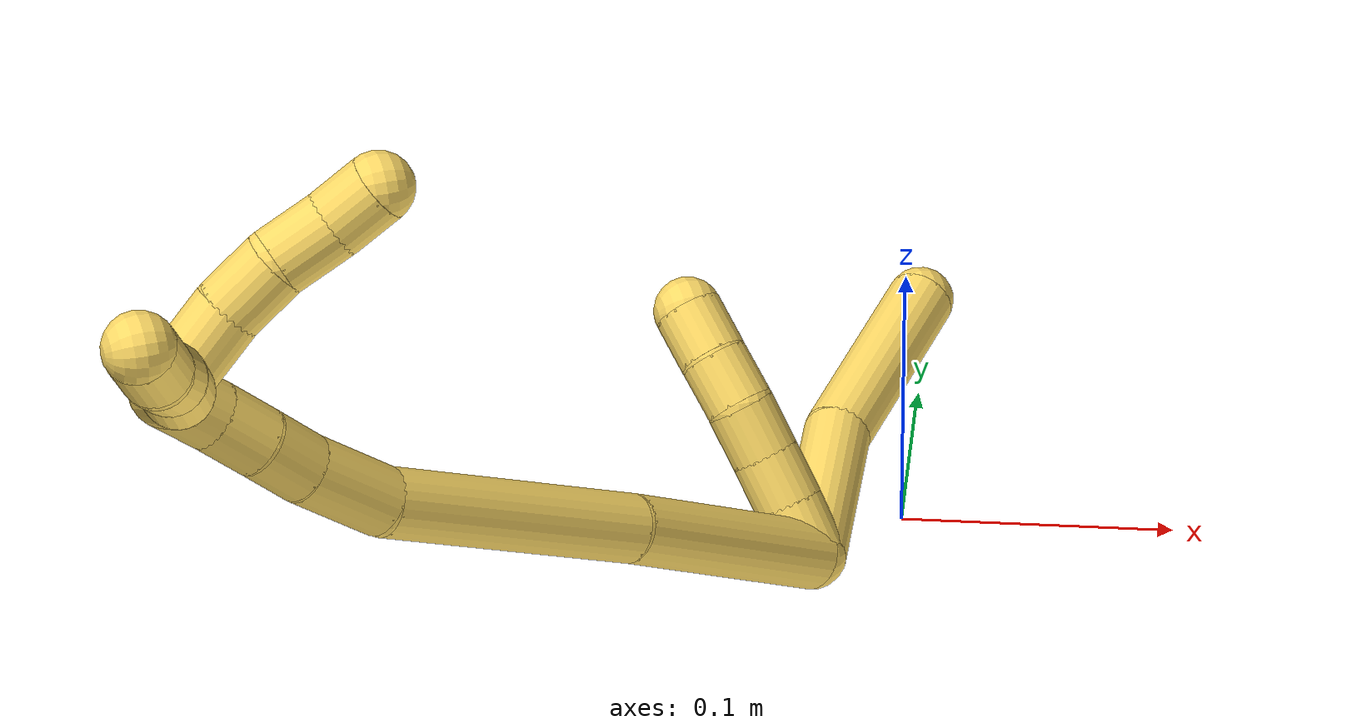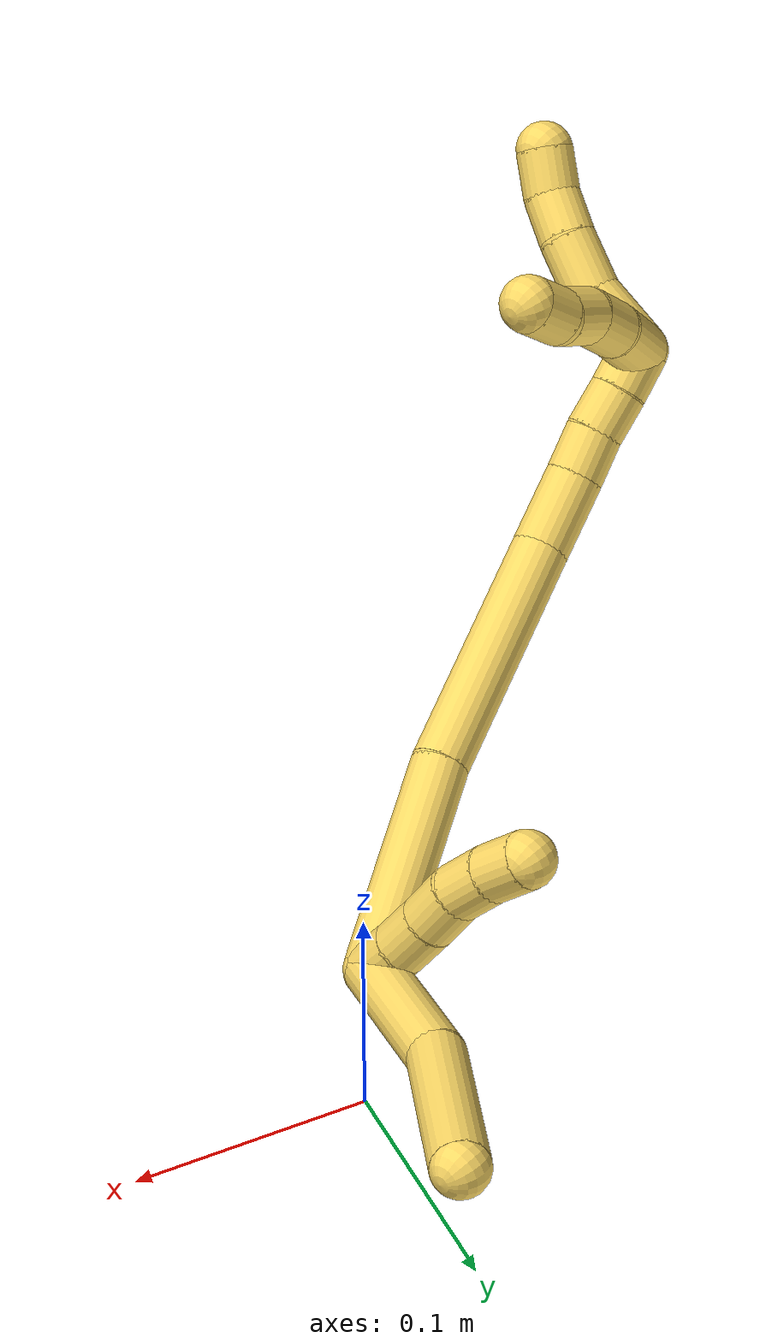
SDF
<sdf version="1.7">
 <world name="default">
  <model name="5">
   <static>0</static>
   <link name="5">
    <collision name="collision-cylinder-e_1_2_8">
     <pose>0.013953 0.027527 -0.015875 -2.09392 0.413743 -0.696973</pose>
     <geometry><cylinder><radius>0.0125</radius><length>0.06941</length></cylinder></geometry>
     <surface>
      <friction><ode><mu>1.16</mu><mu2>1.16</mu2><slip1>0</slip1><slip2>0</slip2></ode></friction>
      <contact><ode><kp>1e+06</kp><kd>1</kd><max_vel>0</max_vel><min_depth>0.001</min_depth></ode></contact>
     </surface>
    </collision>
    <visual name="visual-cylinder-e_1_2_8">
     <pose>0.013953 0.027527 -0.015875 -2.09392 0.413743 -0.696973</pose>
     <geometry><cylinder><radius>0.0125</radius><length>0.06941</length></cylinder></geometry>
     <material><ambient>1 0.858824 0.4 1</ambient></material>
    </visual>
    <collision name="collision-cylinder-e_2_8_6">
     <pose>0.043506 0.080365 -0.058947 -2.39207 0.397542 -0.946541</pose>
     <geometry><cylinder><radius>0.0125</radius><length>0.08059</length></cylinder></geometry>
     <surface>
      <friction><ode><mu>1.16</mu><mu2>1.16</mu2><slip1>0</slip1><slip2>0</slip2></ode></friction>
      <contact><ode><kp>1e+06</kp><kd>1</kd><max_vel>0</max_vel><min_depth>0.001</min_depth></ode></contact>
     </surface>
    </collision>
    <visual name="visual-cylinder-e_2_8_6">
     <pose>0.043506 0.080365 -0.058947 -2.39207 0.397542 -0.946541</pose>
     <geometry><cylinder><radius>0.0125</radius><length>0.08059</length></cylinder></geometry>
     <material><ambient>1 0.858824 0.4 1</ambient></material>
    </visual>
    <collision name="collision-cylinder-e_1_2_9">
     <pose>0.009202 0.003204 0.002248 -0.95887 1.16867 -0.662364</pose>
     <geometry><cylinder><radius>0.0125</radius><length>0.02</length></cylinder></geometry>
     <surface>
      <friction><ode><mu>1.16</mu><mu2>1.16</mu2><slip1>0</slip1><slip2>0</slip2></ode></friction>
      <contact><ode><kp>1e+06</kp><kd>1</kd><max_vel>0</max_vel><min_depth>0.001</min_depth></ode></contact>
     </surface>
    </collision>
    <visual name="visual-cylinder-e_1_2_9">
     <pose>0.009202 0.003204 0.002248 -0.95887 1.16867 -0.662364</pose>
     <geometry><cylinder><radius>0.0125</radius><length>0.02</length></cylinder></geometry>
     <material><ambient>1 0.858824 0.4 1</ambient></material>
    </visual>
    <collision name="collision-cylinder-e_2_9_10">
     <pose>0.027644 0.009056 0.007257 -0.764796 1.1782 -0.525129</pose>
     <geometry><cylinder><radius>0.0125</radius><length>0.02</length></cylinder></geometry>
     <surface>
      <friction><ode><mu>1.16</mu><mu2>1.16</mu2><slip1>0</slip1><slip2>0</slip2></ode></friction>
      <contact><ode><kp>1e+06</kp><kd>1</kd><max_vel>0</max_vel><min_depth>0.001</min_depth></ode></contact>
     </surface>
    </collision>
    <visual name="visual-cylinder-e_2_9_10">
     <pose>0.027644 0.009056 0.007257 -0.764796 1.1782 -0.525129</pose>
     <geometry><cylinder><radius>0.0125</radius><length>0.02</length></cylinder></geometry>
     <material><ambient>1 0.858824 0.4 1</ambient></material>
    </visual>
    <collision name="collision-cylinder-e_3_10_11">
     <pose>0.046177 0.013963 0.012937 -0.658249 1.19272 -0.455641</pose>
     <geometry><cylinder><radius>0.0125</radius><length>0.02</length></cylinder></geometry>
     <surface>
      <friction><ode><mu>1.16</mu><mu2>1.16</mu2><slip1>0</slip1><slip2>0</slip2></ode></friction>
      <contact><ode><kp>1e+06</kp><kd>1</kd><max_vel>0</max_vel><min_depth>0.001</min_depth></ode></contact>
     </surface>
    </collision>
    <visual name="visual-cylinder-e_3_10_11">
     <pose>0.046177 0.013963 0.012937 -0.658249 1.19272 -0.455641</pose>
     <geometry><cylinder><radius>0.0125</radius><length>0.02</length></cylinder></geometry>
     <material><ambient>1 0.858824 0.4 1</ambient></material>
    </visual>
    <collision name="collision-cylinder-e_4_11_12">
     <pose>0.064063 0.020574 0.018545 -1.01763 1.03377 -0.614089</pose>
     <geometry><cylinder><radius>0.0125</radius><length>0.02</length></cylinder></geometry>
     <surface>
      <friction><ode><mu>1.16</mu><mu2>1.16</mu2><slip1>0</slip1><slip2>0</slip2></ode></friction>
      <contact><ode><kp>1e+06</kp><kd>1</kd><max_vel>0</max_vel><min_depth>0.001</min_depth></ode></contact>
     </surface>
    </collision>
    <visual name="visual-cylinder-e_4_11_12">
     <pose>0.064063 0.020574 0.018545 -1.01763 1.03377 -0.614089</pose>
     <geometry><cylinder><radius>0.0125</radius><length>0.02</length></cylinder></geometry>
     <material><ambient>1 0.858824 0.4 1</ambient></material>
    </visual>
    <collision name="collision-cylinder-e_5_12_5">
     <pose>0.080822 0.030252 0.023456 -1.1754 0.955703 -0.664479</pose>
     <geometry><cylinder><radius>0.0125</radius><length>0.02</length></cylinder></geometry>
     <surface>
      <friction><ode><mu>1.16</mu><mu2>1.16</mu2><slip1>0</slip1><slip2>0</slip2></ode></friction>
      <contact><ode><kp>1e+06</kp><kd>1</kd><max_vel>0</max_vel><min_depth>0.001</min_depth></ode></contact>
     </surface>
    </collision>
    <visual name="visual-cylinder-e_5_12_5">
     <pose>0.080822 0.030252 0.023456 -1.1754 0.955703 -0.664479</pose>
     <geometry><cylinder><radius>0.0125</radius><length>0.02</length></cylinder></geometry>
     <material><ambient>1 0.858824 0.4 1</ambient></material>
    </visual>
    <collision name="collision-cylinder-e_1_2_13">
     <pose>0.017268 -0.020289 0.038931 0.480427 0.37476 0.092818</pose>
     <geometry><cylinder><radius>0.0125</radius><length>0.094349</length></cylinder></geometry>
     <surface>
      <friction><ode><mu>1.16</mu><mu2>1.16</mu2><slip1>0</slip1><slip2>0</slip2></ode></friction>
      <contact><ode><kp>1e+06</kp><kd>1</kd><max_vel>0</max_vel><min_depth>0.001</min_depth></ode></contact>
     </surface>
    </collision>
    <visual name="visual-cylinder-e_1_2_13">
     <pose>0.017268 -0.020289 0.038931 0.480427 0.37476 0.092818</pose>
     <geometry><cylinder><radius>0.0125</radius><length>0.094349</length></cylinder></geometry>
     <material><ambient>1 0.858824 0.4 1</ambient></material>
    </visual>
    <collision name="collision-cylinder-e_2_13_14">
     <pose>0.052705 -0.058701 0.125745 0.361824 0.340999 0.062963</pose>
     <geometry><cylinder><radius>0.0125</radius><length>0.108655</length></cylinder></geometry>
     <surface>
      <friction><ode><mu>1.16</mu><mu2>1.16</mu2><slip1>0</slip1><slip2>0</slip2></ode></friction>
      <contact><ode><kp>1e+06</kp><kd>1</kd><max_vel>0</max_vel><min_depth>0.001</min_depth></ode></contact>
     </surface>
    </collision>
    <visual name="visual-cylinder-e_2_13_14">
     <pose>0.052705 -0.058701 0.125745 0.361824 0.340999 0.062963</pose>
     <geometry><cylinder><radius>0.0125</radius><length>0.108655</length></cylinder></geometry>
     <material><ambient>1 0.858824 0.4 1</ambient></material>
    </visual>
    <collision name="collision-cylinder-e_3_14_15">
     <pose>0.080523 -0.081692 0.187533 0.336737 0.579938 0.101349</pose>
     <geometry><cylinder><radius>0.0125</radius><length>0.03522</length></cylinder></geometry>
     <surface>
      <friction><ode><mu>1.16</mu><mu2>1.16</mu2><slip1>0</slip1><slip2>0</slip2></ode></friction>
      <contact><ode><kp>1e+06</kp><kd>1</kd><max_vel>0</max_vel><min_depth>0.001</min_depth></ode></contact>
     </surface>
    </collision>
    <visual name="visual-cylinder-e_3_14_15">
     <pose>0.080523 -0.081692 0.187533 0.336737 0.579938 0.101349</pose>
     <geometry><cylinder><radius>0.0125</radius><length>0.03522</length></cylinder></geometry>
     <material><ambient>1 0.858824 0.4 1</ambient></material>
    </visual>
    <collision name="collision-cylinder-e_4_15_16">
     <pose>0.096762 -0.089362 0.209052 0.352699 0.681974 0.1263</pose>
     <geometry><cylinder><radius>0.0125</radius><length>0.020906</length></cylinder></geometry>
     <surface>
      <friction><ode><mu>1.16</mu><mu2>1.16</mu2><slip1>0</slip1><slip2>0</slip2></ode></friction>
      <contact><ode><kp>1e+06</kp><kd>1</kd><max_vel>0</max_vel><min_depth>0.001</min_depth></ode></contact>
     </surface>
    </collision>
    <visual name="visual-cylinder-e_4_15_16">
     <pose>0.096762 -0.089362 0.209052 0.352699 0.681974 0.1263</pose>
     <geometry><cylinder><radius>0.0125</radius><length>0.020906</length></cylinder></geometry>
     <material><ambient>1 0.858824 0.4 1</ambient></material>
    </visual>
    <collision name="collision-cylinder-e_5_16_17">
     <pose>0.109863 -0.093844 0.224448 0.212494 0.685722 0.076102</pose>
     <geometry><cylinder><radius>0.0125</radius><length>0.020569</length></cylinder></geometry>
     <surface>
      <friction><ode><mu>1.16</mu><mu2>1.16</mu2><slip1>0</slip1><slip2>0</slip2></ode></friction>
      <contact><ode><kp>1e+06</kp><kd>1</kd><max_vel>0</max_vel><min_depth>0.001</min_depth></ode></contact>
     </surface>
    </collision>
    <visual name="visual-cylinder-e_5_16_17">
     <pose>0.109863 -0.093844 0.224448 0.212494 0.685722 0.076102</pose>
     <geometry><cylinder><radius>0.0125</radius><length>0.020569</length></cylinder></geometry>
     <material><ambient>1 0.858824 0.4 1</ambient></material>
    </visual>
    <collision name="collision-cylinder-e_6_17_1">
     <pose>0.122487 -0.097736 0.240026 0.276525 0.646031 0.093091</pose>
     <geometry><cylinder><radius>0.0125</radius><length>0.020302</length></cylinder></geometry>
     <surface>
      <friction><ode><mu>1.16</mu><mu2>1.16</mu2><slip1>0</slip1><slip2>0</slip2></ode></friction>
      <contact><ode><kp>1e+06</kp><kd>1</kd><max_vel>0</max_vel><min_depth>0.001</min_depth></ode></contact>
     </surface>
    </collision>
    <visual name="visual-cylinder-e_6_17_1">
     <pose>0.122487 -0.097736 0.240026 0.276525 0.646031 0.093091</pose>
     <geometry><cylinder><radius>0.0125</radius><length>0.020302</length></cylinder></geometry>
     <material><ambient>1 0.858824 0.4 1</ambient></material>
    </visual>
    <collision name="collision-cylinder-e_1_1_18">
     <pose>0.131947 -0.115364 0.248914 1.50018 0.213434 0.198969</pose>
     <geometry><cylinder><radius>0.0125</radius><length>0.031627</length></cylinder></geometry>
     <surface>
      <friction><ode><mu>1.16</mu><mu2>1.16</mu2><slip1>0</slip1><slip2>0</slip2></ode></friction>
      <contact><ode><kp>1e+06</kp><kd>1</kd><max_vel>0</max_vel><min_depth>0.001</min_depth></ode></contact>
     </surface>
    </collision>
    <visual name="visual-cylinder-e_1_1_18">
     <pose>0.131947 -0.115364 0.248914 1.50018 0.213434 0.198969</pose>
     <geometry><cylinder><radius>0.0125</radius><length>0.031627</length></cylinder></geometry>
     <material><ambient>1 0.858824 0.4 1</ambient></material>
    </visual>
    <collision name="collision-cylinder-e_2_18_19">
     <pose>0.140671 -0.142733 0.253441 1.29086 0.407859 0.308973</pose>
     <geometry><cylinder><radius>0.0125</radius><length>0.027097</length></cylinder></geometry>
     <surface>
      <friction><ode><mu>1.16</mu><mu2>1.16</mu2><slip1>0</slip1><slip2>0</slip2></ode></friction>
      <contact><ode><kp>1e+06</kp><kd>1</kd><max_vel>0</max_vel><min_depth>0.001</min_depth></ode></contact>
     </surface>
    </collision>
    <visual name="visual-cylinder-e_2_18_19">
     <pose>0.140671 -0.142733 0.253441 1.29086 0.407859 0.308973</pose>
     <geometry><cylinder><radius>0.0125</radius><length>0.027097</length></cylinder></geometry>
     <material><ambient>1 0.858824 0.4 1</ambient></material>
    </visual>
    <collision name="collision-cylinder-e_3_19_20">
     <pose>0.149756 -0.163626 0.260705 1.16619 0.364528 0.241955</pose>
     <geometry><cylinder><radius>0.0125</radius><length>0.020818</length></cylinder></geometry>
     <surface>
      <friction><ode><mu>1.16</mu><mu2>1.16</mu2><slip1>0</slip1><slip2>0</slip2></ode></friction>
      <contact><ode><kp>1e+06</kp><kd>1</kd><max_vel>0</max_vel><min_depth>0.001</min_depth></ode></contact>
     </surface>
    </collision>
    <visual name="visual-cylinder-e_3_19_20">
     <pose>0.149756 -0.163626 0.260705 1.16619 0.364528 0.241955</pose>
     <geometry><cylinder><radius>0.0125</radius><length>0.020818</length></cylinder></geometry>
     <material><ambient>1 0.858824 0.4 1</ambient></material>
    </visual>
    <collision name="collision-cylinder-e_4_20_4">
     <pose>0.159569 -0.179872 0.268279 1.09712 0.639222 0.399129</pose>
     <geometry><cylinder><radius>0.0125</radius><length>0.020458</length></cylinder></geometry>
     <surface>
      <friction><ode><mu>1.16</mu><mu2>1.16</mu2><slip1>0</slip1><slip2>0</slip2></ode></friction>
      <contact><ode><kp>1e+06</kp><kd>1</kd><max_vel>0</max_vel><min_depth>0.001</min_depth></ode></contact>
     </surface>
    </collision>
    <visual name="visual-cylinder-e_4_20_4">
     <pose>0.159569 -0.179872 0.268279 1.09712 0.639222 0.399129</pose>
     <geometry><cylinder><radius>0.0125</radius><length>0.020458</length></cylinder></geometry>
     <material><ambient>1 0.858824 0.4 1</ambient></material>
    </visual>
    <collision name="collision-cylinder-e_1_1_21">
     <pose>0.140739 -0.101717 0.235945 2.99379 0.790858 2.7905</pose>
     <geometry><cylinder><radius>0.0125</radius><length>0.034154</length></cylinder></geometry>
     <surface>
      <friction><ode><mu>1.16</mu><mu2>1.16</mu2><slip1>0</slip1><slip2>0</slip2></ode></friction>
      <contact><ode><kp>1e+06</kp><kd>1</kd><max_vel>0</max_vel><min_depth>0.001</min_depth></ode></contact>
     </surface>
    </collision>
    <visual name="visual-cylinder-e_1_1_21">
     <pose>0.140739 -0.101717 0.235945 2.99379 0.790858 2.7905</pose>
     <geometry><cylinder><radius>0.0125</radius><length>0.034154</length></cylinder></geometry>
     <material><ambient>1 0.858824 0.4 1</ambient></material>
    </visual>
    <collision name="collision-cylinder-e_2_21_22">
     <pose>0.159987 -0.106297 0.215567 2.82217 0.671005 2.27605</pose>
     <geometry><cylinder><radius>0.0125</radius><length>0.022862</length></cylinder></geometry>
     <surface>
      <friction><ode><mu>1.16</mu><mu2>1.16</mu2><slip1>0</slip1><slip2>0</slip2></ode></friction>
      <contact><ode><kp>1e+06</kp><kd>1</kd><max_vel>0</max_vel><min_depth>0.001</min_depth></ode></contact>
     </surface>
    </collision>
    <visual name="visual-cylinder-e_2_21_22">
     <pose>0.159987 -0.106297 0.215567 2.82217 0.671005 2.27605</pose>
     <geometry><cylinder><radius>0.0125</radius><length>0.022862</length></cylinder></geometry>
     <material><ambient>1 0.858824 0.4 1</ambient></material>
    </visual>
    <collision name="collision-cylinder-e_3_22_23">
     <pose>0.172165 -0.110153 0.19694 3.03883 0.462034 2.71109</pose>
     <geometry><cylinder><radius>0.0125</radius><length>0.022746</length></cylinder></geometry>
     <surface>
      <friction><ode><mu>1.16</mu><mu2>1.16</mu2><slip1>0</slip1><slip2>0</slip2></ode></friction>
      <contact><ode><kp>1e+06</kp><kd>1</kd><max_vel>0</max_vel><min_depth>0.001</min_depth></ode></contact>
     </surface>
    </collision>
    <visual name="visual-cylinder-e_3_22_23">
     <pose>0.172165 -0.110153 0.19694 3.03883 0.462034 2.71109</pose>
     <geometry><cylinder><radius>0.0125</radius><length>0.022746</length></cylinder></geometry>
     <material><ambient>1 0.858824 0.4 1</ambient></material>
    </visual>
    <collision name="collision-cylinder-e_4_23_3">
     <pose>0.182785 -0.114548 0.179045 2.73432 0.58059 1.93194</pose>
     <geometry><cylinder><radius>0.0125</radius><length>0.020237</length></cylinder></geometry>
     <surface>
      <friction><ode><mu>1.16</mu><mu2>1.16</mu2><slip1>0</slip1><slip2>0</slip2></ode></friction>
      <contact><ode><kp>1e+06</kp><kd>1</kd><max_vel>0</max_vel><min_depth>0.001</min_depth></ode></contact>
     </surface>
    </collision>
    <visual name="visual-cylinder-e_4_23_3">
     <pose>0.182785 -0.114548 0.179045 2.73432 0.58059 1.93194</pose>
     <geometry><cylinder><radius>0.0125</radius><length>0.020237</length></cylinder></geometry>
     <material><ambient>1 0.858824 0.4 1</ambient></material>
    </visual>
    <collision name="collision-sphere-3">
     <pose>0.188335 -0.1179 0.171276 0 -0 0</pose>
     <geometry><sphere><radius>0.0125</radius></sphere></geometry>
     <surface>
      <friction><ode><mu>1.16</mu><mu2>1.16</mu2><slip1>0</slip1><slip2>0</slip2></ode></friction>
      <contact><ode><kp>1e+06</kp><kd>1</kd><max_vel>0</max_vel><min_depth>0.001</min_depth></ode></contact>
     </surface>
    </collision>
    <visual name="visual-sphere-3">
     <pose>0.188335 -0.1179 0.171276 0 -0 0</pose>
     <geometry><sphere><radius>0.0125</radius></sphere></geometry>
     <material><ambient>1 0.858824 0.4 1</ambient></material>
    </visual>
    <collision name="collision-sphere-23">
     <pose>0.177235 -0.111197 0.186813 0 -0 0</pose>
     <geometry><sphere><radius>0.0125</radius></sphere></geometry>
     <surface>
      <friction><ode><mu>1.16</mu><mu2>1.16</mu2><slip1>0</slip1><slip2>0</slip2></ode></friction>
      <contact><ode><kp>1e+06</kp><kd>1</kd><max_vel>0</max_vel><min_depth>0.001</min_depth></ode></contact>
     </surface>
    </collision>
    <visual name="visual-sphere-23">
     <pose>0.177235 -0.111197 0.186813 0 -0 0</pose>
     <geometry><sphere><radius>0.0125</radius></sphere></geometry>
     <material><ambient>1 0.858824 0.4 1</ambient></material>
    </visual>
    <collision name="collision-sphere-22">
     <pose>0.167095 -0.109108 0.207067 0 -0 0</pose>
     <geometry><sphere><radius>0.0125</radius></sphere></geometry>
     <surface>
      <friction><ode><mu>1.16</mu><mu2>1.16</mu2><slip1>0</slip1><slip2>0</slip2></ode></friction>
      <contact><ode><kp>1e+06</kp><kd>1</kd><max_vel>0</max_vel><min_depth>0.001</min_depth></ode></contact>
     </surface>
    </collision>
    <visual name="visual-sphere-22">
     <pose>0.167095 -0.109108 0.207067 0 -0 0</pose>
     <geometry><sphere><radius>0.0125</radius></sphere></geometry>
     <material><ambient>1 0.858824 0.4 1</ambient></material>
    </visual>
    <collision name="collision-sphere-21">
     <pose>0.15288 -0.103486 0.224067 0 -0 0</pose>
     <geometry><sphere><radius>0.0125</radius></sphere></geometry>
     <surface>
      <friction><ode><mu>1.16</mu><mu2>1.16</mu2><slip1>0</slip1><slip2>0</slip2></ode></friction>
      <contact><ode><kp>1e+06</kp><kd>1</kd><max_vel>0</max_vel><min_depth>0.001</min_depth></ode></contact>
     </surface>
    </collision>
    <visual name="visual-sphere-21">
     <pose>0.15288 -0.103486 0.224067 0 -0 0</pose>
     <geometry><sphere><radius>0.0125</radius></sphere></geometry>
     <material><ambient>1 0.858824 0.4 1</ambient></material>
    </visual>
    <collision name="collision-sphere-4">
     <pose>0.165671 -0.187177 0.272023 0 -0 0</pose>
     <geometry><sphere><radius>0.0125</radius></sphere></geometry>
     <surface>
      <friction><ode><mu>1.16</mu><mu2>1.16</mu2><slip1>0</slip1><slip2>0</slip2></ode></friction>
      <contact><ode><kp>1e+06</kp><kd>1</kd><max_vel>0</max_vel><min_depth>0.001</min_depth></ode></contact>
     </surface>
    </collision>
    <visual name="visual-sphere-4">
     <pose>0.165671 -0.187177 0.272023 0 -0 0</pose>
     <geometry><sphere><radius>0.0125</radius></sphere></geometry>
     <material><ambient>1 0.858824 0.4 1</ambient></material>
    </visual>
    <collision name="collision-sphere-20">
     <pose>0.153466 -0.172566 0.264534 0 -0 0</pose>
     <geometry><sphere><radius>0.0125</radius></sphere></geometry>
     <surface>
      <friction><ode><mu>1.16</mu><mu2>1.16</mu2><slip1>0</slip1><slip2>0</slip2></ode></friction>
      <contact><ode><kp>1e+06</kp><kd>1</kd><max_vel>0</max_vel><min_depth>0.001</min_depth></ode></contact>
     </surface>
    </collision>
    <visual name="visual-sphere-20">
     <pose>0.153466 -0.172566 0.264534 0 -0 0</pose>
     <geometry><sphere><radius>0.0125</radius></sphere></geometry>
     <material><ambient>1 0.858824 0.4 1</ambient></material>
    </visual>
    <collision name="collision-sphere-11">
     <pose>0.055471 0.016221 0.015858 0 -0 0</pose>
     <geometry><sphere><radius>0.0125</radius></sphere></geometry>
     <surface>
      <friction><ode><mu>1.16</mu><mu2>1.16</mu2><slip1>0</slip1><slip2>0</slip2></ode></friction>
      <contact><ode><kp>1e+06</kp><kd>1</kd><max_vel>0</max_vel><min_depth>0.001</min_depth></ode></contact>
     </surface>
    </collision>
    <visual name="visual-sphere-11">
     <pose>0.055471 0.016221 0.015858 0 -0 0</pose>
     <geometry><sphere><radius>0.0125</radius></sphere></geometry>
     <material><ambient>1 0.858824 0.4 1</ambient></material>
    </visual>
    <collision name="collision-sphere-10">
     <pose>0.036883 0.011705 0.010017 0 -0 0</pose>
     <geometry><sphere><radius>0.0125</radius></sphere></geometry>
     <surface>
      <friction><ode><mu>1.16</mu><mu2>1.16</mu2><slip1>0</slip1><slip2>0</slip2></ode></friction>
      <contact><ode><kp>1e+06</kp><kd>1</kd><max_vel>0</max_vel><min_depth>0.001</min_depth></ode></contact>
     </surface>
    </collision>
    <visual name="visual-sphere-10">
     <pose>0.036883 0.011705 0.010017 0 -0 0</pose>
     <geometry><sphere><radius>0.0125</radius></sphere></geometry>
     <material><ambient>1 0.858824 0.4 1</ambient></material>
    </visual>
    <collision name="collision-sphere-6">
     <pose>0.059106 0.105677 -0.086143 0 -0 0</pose>
     <geometry><sphere><radius>0.0125</radius></sphere></geometry>
     <surface>
      <friction><ode><mu>1.16</mu><mu2>1.16</mu2><slip1>0</slip1><slip2>0</slip2></ode></friction>
      <contact><ode><kp>1e+06</kp><kd>1</kd><max_vel>0</max_vel><min_depth>0.001</min_depth></ode></contact>
     </surface>
    </collision>
    <visual name="visual-sphere-6">
     <pose>0.059106 0.105677 -0.086143 0 -0 0</pose>
     <geometry><sphere><radius>0.0125</radius></sphere></geometry>
     <material><ambient>1 0.858824 0.4 1</ambient></material>
    </visual>
    <collision name="collision-sphere-9">
     <pose>0.018405 0.006407 0.004497 0 -0 0</pose>
     <geometry><sphere><radius>0.0125</radius></sphere></geometry>
     <surface>
      <friction><ode><mu>1.16</mu><mu2>1.16</mu2><slip1>0</slip1><slip2>0</slip2></ode></friction>
      <contact><ode><kp>1e+06</kp><kd>1</kd><max_vel>0</max_vel><min_depth>0.001</min_depth></ode></contact>
     </surface>
    </collision>
    <visual name="visual-sphere-9">
     <pose>0.018405 0.006407 0.004497 0 -0 0</pose>
     <geometry><sphere><radius>0.0125</radius></sphere></geometry>
     <material><ambient>1 0.858824 0.4 1</ambient></material>
    </visual>
    <collision name="collision-sphere-2">
     <geometry><sphere><radius>0.0125</radius></sphere></geometry>
     <surface>
      <friction><ode><mu>1.16</mu><mu2>1.16</mu2><slip1>0</slip1><slip2>0</slip2></ode></friction>
      <contact><ode><kp>1e+06</kp><kd>1</kd><max_vel>0</max_vel><min_depth>0.001</min_depth></ode></contact>
     </surface>
    </collision>
    <visual name="visual-sphere-2">
     <geometry><sphere><radius>0.0125</radius></sphere></geometry>
     <material><ambient>1 0.858824 0.4 1</ambient></material>
    </visual>
    <collision name="collision-sphere-19">
     <pose>0.146045 -0.154687 0.256877 0 -0 0</pose>
     <geometry><sphere><radius>0.0125</radius></sphere></geometry>
     <surface>
      <friction><ode><mu>1.16</mu><mu2>1.16</mu2><slip1>0</slip1><slip2>0</slip2></ode></friction>
      <contact><ode><kp>1e+06</kp><kd>1</kd><max_vel>0</max_vel><min_depth>0.001</min_depth></ode></contact>
     </surface>
    </collision>
    <visual name="visual-sphere-19">
     <pose>0.146045 -0.154687 0.256877 0 -0 0</pose>
     <geometry><sphere><radius>0.0125</radius></sphere></geometry>
     <material><ambient>1 0.858824 0.4 1</ambient></material>
    </visual>
    <collision name="collision-sphere-8">
     <pose>0.027905 0.055053 -0.03175 0 -0 0</pose>
     <geometry><sphere><radius>0.0125</radius></sphere></geometry>
     <surface>
      <friction><ode><mu>1.16</mu><mu2>1.16</mu2><slip1>0</slip1><slip2>0</slip2></ode></friction>
      <contact><ode><kp>1e+06</kp><kd>1</kd><max_vel>0</max_vel><min_depth>0.001</min_depth></ode></contact>
     </surface>
    </collision>
    <visual name="visual-sphere-8">
     <pose>0.027905 0.055053 -0.03175 0 -0 0</pose>
     <geometry><sphere><radius>0.0125</radius></sphere></geometry>
     <material><ambient>1 0.858824 0.4 1</ambient></material>
    </visual>
    <collision name="collision-sphere-12">
     <pose>0.072655 0.024927 0.021233 0 -0 0</pose>
     <geometry><sphere><radius>0.0125</radius></sphere></geometry>
     <surface>
      <friction><ode><mu>1.16</mu><mu2>1.16</mu2><slip1>0</slip1><slip2>0</slip2></ode></friction>
      <contact><ode><kp>1e+06</kp><kd>1</kd><max_vel>0</max_vel><min_depth>0.001</min_depth></ode></contact>
     </surface>
    </collision>
    <visual name="visual-sphere-12">
     <pose>0.072655 0.024927 0.021233 0 -0 0</pose>
     <geometry><sphere><radius>0.0125</radius></sphere></geometry>
     <material><ambient>1 0.858824 0.4 1</ambient></material>
    </visual>
    <collision name="collision-sphere-5">
     <pose>0.08899 0.035577 0.025678 0 -0 0</pose>
     <geometry><sphere><radius>0.0125</radius></sphere></geometry>
     <surface>
      <friction><ode><mu>1.16</mu><mu2>1.16</mu2><slip1>0</slip1><slip2>0</slip2></ode></friction>
      <contact><ode><kp>1e+06</kp><kd>1</kd><max_vel>0</max_vel><min_depth>0.001</min_depth></ode></contact>
     </surface>
    </collision>
    <visual name="visual-sphere-5">
     <pose>0.08899 0.035577 0.025678 0 -0 0</pose>
     <geometry><sphere><radius>0.0125</radius></sphere></geometry>
     <material><ambient>1 0.858824 0.4 1</ambient></material>
    </visual>
    <collision name="collision-sphere-13">
     <pose>0.034536 -0.040578 0.077861 0 -0 0</pose>
     <geometry><sphere><radius>0.0125</radius></sphere></geometry>
     <surface>
      <friction><ode><mu>1.16</mu><mu2>1.16</mu2><slip1>0</slip1><slip2>0</slip2></ode></friction>
      <contact><ode><kp>1e+06</kp><kd>1</kd><max_vel>0</max_vel><min_depth>0.001</min_depth></ode></contact>
     </surface>
    </collision>
    <visual name="visual-sphere-13">
     <pose>0.034536 -0.040578 0.077861 0 -0 0</pose>
     <geometry><sphere><radius>0.0125</radius></sphere></geometry>
     <material><ambient>1 0.858824 0.4 1</ambient></material>
    </visual>
    <collision name="collision-sphere-14">
     <pose>0.070873 -0.076825 0.17363 0 -0 0</pose>
     <geometry><sphere><radius>0.0125</radius></sphere></geometry>
     <surface>
      <friction><ode><mu>1.16</mu><mu2>1.16</mu2><slip1>0</slip1><slip2>0</slip2></ode></friction>
      <contact><ode><kp>1e+06</kp><kd>1</kd><max_vel>0</max_vel><min_depth>0.001</min_depth></ode></contact>
     </surface>
    </collision>
    <visual name="visual-sphere-14">
     <pose>0.070873 -0.076825 0.17363 0 -0 0</pose>
     <geometry><sphere><radius>0.0125</radius></sphere></geometry>
     <material><ambient>1 0.858824 0.4 1</ambient></material>
    </visual>
    <collision name="collision-sphere-15">
     <pose>0.090173 -0.086559 0.201436 0 -0 0</pose>
     <geometry><sphere><radius>0.0125</radius></sphere></geometry>
     <surface>
      <friction><ode><mu>1.16</mu><mu2>1.16</mu2><slip1>0</slip1><slip2>0</slip2></ode></friction>
      <contact><ode><kp>1e+06</kp><kd>1</kd><max_vel>0</max_vel><min_depth>0.001</min_depth></ode></contact>
     </surface>
    </collision>
    <visual name="visual-sphere-15">
     <pose>0.090173 -0.086559 0.201436 0 -0 0</pose>
     <geometry><sphere><radius>0.0125</radius></sphere></geometry>
     <material><ambient>1 0.858824 0.4 1</ambient></material>
    </visual>
    <collision name="collision-sphere-16">
     <pose>0.103351 -0.092165 0.216667 0 -0 0</pose>
     <geometry><sphere><radius>0.0125</radius></sphere></geometry>
     <surface>
      <friction><ode><mu>1.16</mu><mu2>1.16</mu2><slip1>0</slip1><slip2>0</slip2></ode></friction>
      <contact><ode><kp>1e+06</kp><kd>1</kd><max_vel>0</max_vel><min_depth>0.001</min_depth></ode></contact>
     </surface>
    </collision>
    <visual name="visual-sphere-16">
     <pose>0.103351 -0.092165 0.216667 0 -0 0</pose>
     <geometry><sphere><radius>0.0125</radius></sphere></geometry>
     <material><ambient>1 0.858824 0.4 1</ambient></material>
    </visual>
    <collision name="collision-sphere-17">
     <pose>0.116376 -0.095523 0.232229 0 -0 0</pose>
     <geometry><sphere><radius>0.0125</radius></sphere></geometry>
     <surface>
      <friction><ode><mu>1.16</mu><mu2>1.16</mu2><slip1>0</slip1><slip2>0</slip2></ode></friction>
      <contact><ode><kp>1e+06</kp><kd>1</kd><max_vel>0</max_vel><min_depth>0.001</min_depth></ode></contact>
     </surface>
    </collision>
    <visual name="visual-sphere-17">
     <pose>0.116376 -0.095523 0.232229 0 -0 0</pose>
     <geometry><sphere><radius>0.0125</radius></sphere></geometry>
     <material><ambient>1 0.858824 0.4 1</ambient></material>
    </visual>
    <collision name="collision-sphere-1">
     <pose>0.128598 -0.099948 0.247824 0 -0 0</pose>
     <geometry><sphere><radius>0.0125</radius></sphere></geometry>
     <surface>
      <friction><ode><mu>1.16</mu><mu2>1.16</mu2><slip1>0</slip1><slip2>0</slip2></ode></friction>
      <contact><ode><kp>1e+06</kp><kd>1</kd><max_vel>0</max_vel><min_depth>0.001</min_depth></ode></contact>
     </surface>
    </collision>
    <visual name="visual-sphere-1">
     <pose>0.128598 -0.099948 0.247824 0 -0 0</pose>
     <geometry><sphere><radius>0.0125</radius></sphere></geometry>
     <material><ambient>1 0.858824 0.4 1</ambient></material>
    </visual>
    <collision name="collision-sphere-18">
     <pose>0.135297 -0.13078 0.250004 0 -0 0</pose>
     <geometry><sphere><radius>0.0125</radius></sphere></geometry>
     <surface>
      <friction><ode><mu>1.16</mu><mu2>1.16</mu2><slip1>0</slip1><slip2>0</slip2></ode></friction>
      <contact><ode><kp>1e+06</kp><kd>1</kd><max_vel>0</max_vel><min_depth>0.001</min_depth></ode></contact>
     </surface>
    </collision>
    <visual name="visual-sphere-18">
     <pose>0.135297 -0.13078 0.250004 0 -0 0</pose>
     <geometry><sphere><radius>0.0125</radius></sphere></geometry>
     <material><ambient>1 0.858824 0.4 1</ambient></material>
    </visual>
    <inertial>
     <pose>0.075254 -0.043139 0.106644 0 -0 0</pose>
     <mass>0.75</mass>
     <inertia><ixx>0.000227</ixx><ixy>0</ixy><ixz>0</ixz><iyy>0.000144</iyy><iyz>0</iyz><izz>-8e-05</izz></inertia>
    </inertial>
   </link>
   <pose>-0.029362 -0.054359 0.013434 -1.6945 -1.31477 2.10914</pose>
  </model>
 </world>
</sdf>
